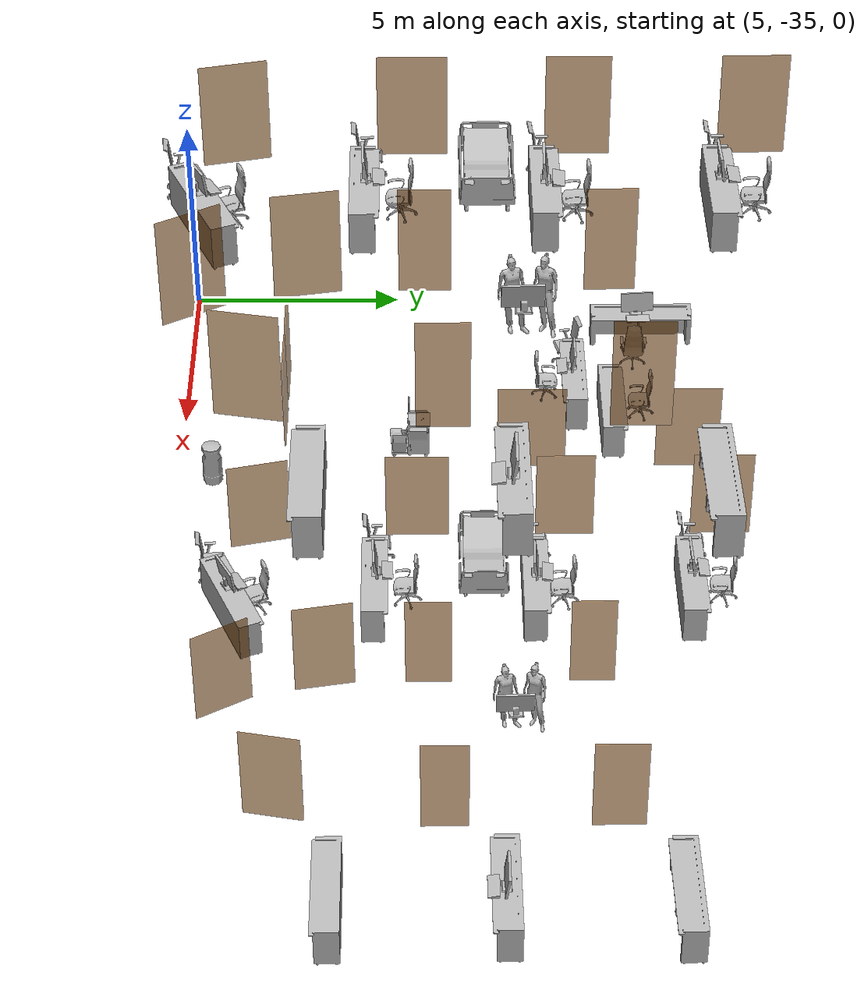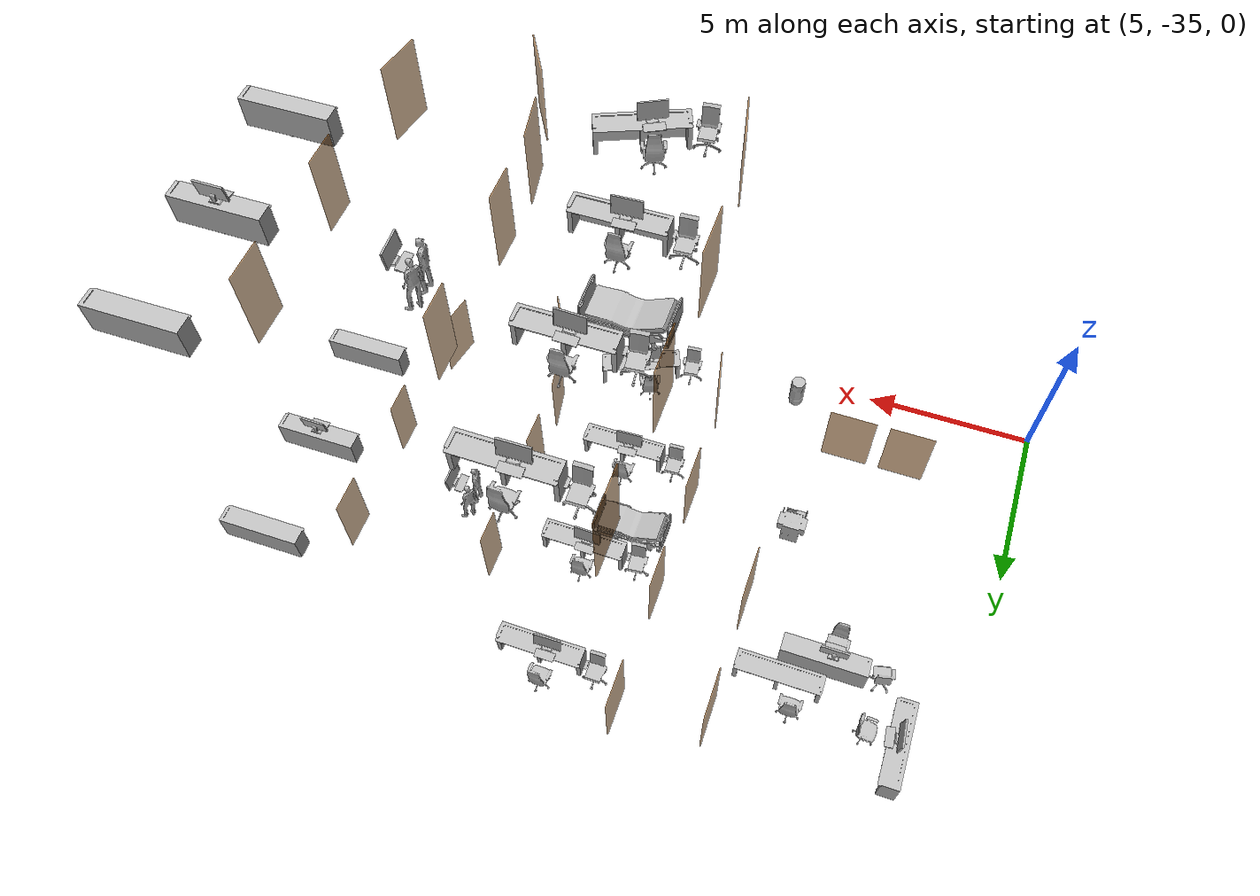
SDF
<sdf version="1.7">
 <world name="sim_world">
  <include>
   <name>OpenRobotics/CGMVanguard_16</name>
   <uri>model://CGMVanguard</uri>
   <pose>15.597392407984323 -28.028079689242748 0.0 0 0 0.0</pose>
   <static>True</static>
  </include>
  <include>
   <name>OpenRobotics/NurseTable_14</name>
   <uri>model://NurseTable</uri>
   <pose>6.872066458982353 -23.99090419599248 0.0 0 0 1.5708</pose>
   <static>True</static>
  </include>
  <include>
   <name>OpenRobotics/NurseTable_15</name>
   <uri>model://NurseTable</uri>
   <pose>17.26572439521558 -33.51072651051886 0.0 0 0 -2.7383</pose>
   <static>True</static>
  </include>
  <include>
   <name>OpenRobotics/NurseTable_16</name>
   <uri>model://NurseTable</uri>
   <pose>25.770343448328934 -31.184662128379706 0.0 0 0 0.0036</pose>
   <static>True</static>
  </include>
  <include>
   <name>OpenRobotics/NurseTable_17</name>
   <uri>model://NurseTable</uri>
   <pose>25.744821353024907 -27.741763778316244 0.0 0 0 0.004</pose>
   <static>True</static>
  </include>
  <include>
   <name>OpenRobotics/NurseTable_18</name>
   <uri>model://NurseTable</uri>
   <pose>16.75862082227608 -30.446028998884685 0.0 0 0 -3.1371</pose>
   <static>True</static>
  </include>
  <include>
   <name>OpenRobotics/NurseTable_19</name>
   <uri>model://NurseTable</uri>
   <pose>16.765620553055665 -26.949690396523234 0.0 0 0 -3.1416</pose>
   <static>True</static>
  </include>
  <include>
   <name>OpenRobotics/NurseTable_20</name>
   <uri>model://NurseTable</uri>
   <pose>16.78801969155034 -23.54494057920851 0.0 0 0 -3.1416</pose>
   <static>True</static>
  </include>
  <include>
   <name>OpenRobotics/NurseTable_26</name>
   <uri>model://NurseTable</uri>
   <pose>25.821468405061367 -24.2898465443637 0.0 0 0 0.0073</pose>
   <static>True</static>
  </include>
  <include>
   <name>OpenRobotics/NurseTable_42</name>
   <uri>model://NurseTable</uri>
   <pose>10.37039729241184 -24.918314680204627 0.0 0 0 -3.1416</pose>
   <static>True</static>
  </include>
  <include>
   <name>OpenRobotics/NurseTable_43</name>
   <uri>model://NurseTable</uri>
   <pose>9.294404061382263 -25.721426098996215 0.0 0 0 0.0</pose>
   <static>True</static>
  </include>
  <include>
   <name>OpenRobotics/DeskChair_12</name>
   <uri>model://DeskChair</uri>
   <pose>7.7511518787739 -24.220279989231205 0.0 0 0 3.0982</pose>
   <static>True</static>
  </include>
  <include>
   <name>OpenRobotics/DeskChair_13</name>
   <uri>model://DeskChair</uri>
   <pose>9.862136071689559 -24.183073727933564 0.0 0 0 -1.5817</pose>
   <static>True</static>
  </include>
  <include>
   <name>OpenRobotics/DeskChair_14</name>
   <uri>model://DeskChair</uri>
   <pose>9.04612899503866 -26.41262259143881 0.0 0 0 1.5708</pose>
   <static>True</static>
  </include>
  <include>
   <name>OpenRobotics/DeskChair_15</name>
   <uri>model://DeskChair</uri>
   <pose>16.567097419330043 -29.722499134648693 0.0 0 0 -1.5664</pose>
   <static>True</static>
  </include>
  <include>
   <name>OpenRobotics/DeskChair_16</name>
   <uri>model://DeskChair</uri>
   <pose>16.78406215145573 -32.98765816699361 0.0 0 0 -1.204</pose>
   <static>True</static>
  </include>
  <include>
   <name>OpenRobotics/DeskChair_21</name>
   <uri>model://DeskChair</uri>
   <pose>16.63941002269145 -26.292011845698266 0.0 0 0 -1.5444</pose>
   <static>True</static>
  </include>
  <include>
   <name>OpenRobotics/DeskChair_22</name>
   <uri>model://DeskChair</uri>
   <pose>16.577408561209197 -22.809861159186205 0.0 0 0 -1.6217</pose>
   <static>True</static>
  </include>
  <include>
   <name>OpenRobotics/OfficeChairGrey_33</name>
   <uri>model://OfficeChairGrey</uri>
   <pose>7.699811545709788 -25.96272835660169 0.0 0 0 0.2197</pose>
   <static>True</static>
  </include>
  <include>
   <name>OpenRobotics/OfficeChairGrey_34</name>
   <uri>model://OfficeChairGrey</uri>
   <pose>15.135517864697524 -30.2370601130726 0.0 0 0 -3.1022</pose>
   <static>True</static>
  </include>
  <include>
   <name>OpenRobotics/OfficeChairGrey_35</name>
   <uri>model://OfficeChairGrey</uri>
   <pose>15.691996461674567 -33.89568478135459 0.0 0 0 -3.0466</pose>
   <static>True</static>
  </include>
  <include>
   <name>OpenRobotics/OfficeChairGrey_46</name>
   <uri>model://OfficeChairGrey</uri>
   <pose>15.123510634206388 -26.75962078381603 0.0 0 0 -3.0521</pose>
   <static>True</static>
  </include>
  <include>
   <name>OpenRobotics/OfficeChairGrey_48</name>
   <uri>model://OfficeChairGrey</uri>
   <pose>15.156786277450882 -23.28740433060269 0.0 0 0 -3.1369</pose>
   <static>True</static>
  </include>
  <include>
   <name>OpenRobotics/MonitorAndKeyboard_12</name>
   <uri>model://MonitorAndKeyboard</uri>
   <pose>9.08500442290682 -25.758982346832838 0.86 0 0 1.5708</pose>
   <static>True</static>
  </include>
  <include>
   <name>OpenRobotics/MonitorAndKeyboard_13</name>
   <uri>model://MonitorAndKeyboard</uri>
   <pose>6.897992384908279 -24.11574170224224 0.86 0 0 -3.0596</pose>
   <static>True</static>
  </include>
  <include>
   <name>OpenRobotics/MonitorAndKeyboard_22</name>
   <uri>model://MonitorAndKeyboard</uri>
   <pose>16.578808507365114 -23.529621937617804 0.86 0 0 -1.5565</pose>
   <static>True</static>
  </include>
  <include>
   <name>OpenRobotics/MonitorAndKeyboard_23</name>
   <uri>model://MonitorAndKeyboard</uri>
   <pose>16.66759740010001 -26.921906849736573 0.86 0 0 -1.5981</pose>
   <static>True</static>
  </include>
  <include>
   <name>OpenRobotics/MonitorAndKeyboard_28</name>
   <uri>model://MonitorAndKeyboard</uri>
   <pose>25.807684319833875 -27.759128495057908 0.86 0 0 1.5708</pose>
   <static>True</static>
  </include>
  <include>
   <name>OpenRobotics/MonitorAndKeyboard_30</name>
   <uri>model://MonitorAndKeyboard</uri>
   <pose>17.036294757893945 -33.59886927425872 0.86 0 0 -1.0917</pose>
   <static>True</static>
  </include>
  <include>
   <name>OpenRobotics/MonitorAndKeyboard_31</name>
   <uri>model://MonitorAndKeyboard</uri>
   <pose>16.593184877504726 -30.402899888465857 0.86 0 0 -1.5318</pose>
   <static>True</static>
  </include>
  <include>
   <name>OpenRobotics/MonitorAndKeyboard_52</name>
   <uri>model://MonitorAndKeyboard</uri>
   <pose>21.12429906542058 -27.467105111341894 0.86 0 0 0.0351</pose>
   <static>True</static>
  </include>
  <include>
   <name>OpenRobotics/LitterBin_8</name>
   <uri>model://LitterBin</uri>
   <pose>12.270716510903437 -34.21376870120383 0.0 0 0 1.5708</pose>
   <static>True</static>
  </include>
  <include>
   <name>OpenRobotics/Scrubs_4</name>
   <uri>model://Scrubs</uri>
   <pose>20.446132841044594 -27.06693588708129 0.0 0 0 -0.4618</pose>
   <static>True</static>
  </include>
  <include>
   <name>OpenRobotics/Scrubs_5</name>
   <uri>model://Scrubs</uri>
   <pose>20.47590861889929 -27.662424522133787 0.0 0 0 0.2369</pose>
   <static>True</static>
  </include>
  <include>
   <name>OpenRobotics/MopCart2_3</name>
   <uri>model://MopCart2</uri>
   <pose>11.208534287142813 -29.69503865235955 0.0 0 0 1.5708</pose>
   <static>True</static>
  </include>
  <model name="L1_left_consult_rm_8_outer">
   <pose>14.54766162839892 -33.0019806930503 0.0 0 0 -1.3439871844568383</pose>
   <static>true</static>
   <link name="right">
    <pose>0 0 1.11 0 0 0</pose>
    <visual name="right_visual">
     <geometry><box><size>1.3621445813119888 0.03 2.2</size></box></geometry>
     <material>
      <ambient>0.5 0.25 0 0.6</ambient>
      <diffuse>0.5 0.25 0 0.6</diffuse>
      <pbr><metal><metalness>0.0</metalness></metal></pbr>
     </material>
    </visual>
    <collision name="right_collision">
     <geometry><box><size>1.3621445813119888 0.03 2.2</size></box></geometry>
     <surface><contact><collide_bitmask>0x02</collide_bitmask></contact></surface>
    </collision>
    <inertial>
     <mass>50.0</mass>
     <inertia><ixx>20.17041666666667</ixx><iyy>27.897657751656727</iyy><izz>7.734741084990055</izz></inertia>
    </inertial>
   </link>
   <joint name="right_joint" type="prismatic">
    <parent>world</parent>
    <child>right</child>
    <axis>
     <xyz>1 0 0</xyz>
     <limit><lower>0.0</lower><upper>1.3721445813119888</upper><effort>500.0</effort></limit>
    </axis>
   </joint>
  </model>
  <model name="L1_left_consult_rm_9_outer">
   <pose>14.307718933887172 -29.486527441252285 0.0 0 0 -1.5707963267948966</pose>
   <static>true</static>
   <link name="right">
    <pose>0 0 1.11 0 0 0</pose>
    <visual name="right_visual">
     <geometry><box><size>1.401791854159457 0.03 2.2</size></box></geometry>
     <material>
      <ambient>0.5 0.25 0 0.6</ambient>
      <diffuse>0.5 0.25 0 0.6</diffuse>
      <pbr><metal><metalness>0.0</metalness></metal></pbr>
     </material>
    </visual>
    <collision name="right_collision">
     <geometry><box><size>1.401791854159457 0.03 2.2</size></box></geometry>
     <surface><contact><collide_bitmask>0x02</collide_bitmask></contact></surface>
    </collision>
    <inertial>
     <mass>50.0</mass>
     <inertia><ixx>20.17041666666667</ixx><iyy>28.354251676615874</iyy><izz>8.191335009949201</izz></inertia>
    </inertial>
   </link>
   <joint name="right_joint" type="prismatic">
    <parent>world</parent>
    <child>right</child>
    <axis>
     <xyz>1 0 0</xyz>
     <limit><lower>0.0</lower><upper>1.411791854159457</upper><effort>500.0</effort></limit>
    </axis>
   </joint>
  </model>
  <model name="L1_left_consult_rm_10_outer">
   <pose>14.307718933887172 -26.181039190800377 0.0 0 0 -1.5707963267948966</pose>
   <static>true</static>
   <link name="right">
    <pose>0 0 1.11 0 0 0</pose>
    <visual name="right_visual">
     <geometry><box><size>1.2997034729433474 0.03 2.2</size></box></geometry>
     <material>
      <ambient>0.5 0.25 0 0.6</ambient>
      <diffuse>0.5 0.25 0 0.6</diffuse>
      <pbr><metal><metalness>0.0</metalness></metal></pbr>
     </material>
    </visual>
    <collision name="right_collision">
     <geometry><box><size>1.2997034729433474 0.03 2.2</size></box></geometry>
     <surface><contact><collide_bitmask>0x02</collide_bitmask></contact></surface>
    </collision>
    <inertial>
     <mass>50.0</mass>
     <inertia><ixx>20.17041666666667</ixx><iyy>27.205121323254165</iyy><izz>7.0422046565874945</izz></inertia>
    </inertial>
   </link>
   <joint name="right_joint" type="prismatic">
    <parent>world</parent>
    <child>right</child>
    <axis>
     <xyz>1 0 0</xyz>
     <limit><lower>0.0</lower><upper>1.3097034729433474</upper><effort>500.0</effort></limit>
    </axis>
   </joint>
  </model>
  <model name="L1_left_consult_rm_11_outer">
   <pose>14.307718933887172 -22.673729856544 0.0 0 0 -1.5707963267948966</pose>
   <static>true</static>
   <link name="right">
    <pose>0 0 1.11 0 0 0</pose>
    <visual name="right_visual">
     <geometry><box><size>1.346359370793431 0.03 2.2</size></box></geometry>
     <material>
      <ambient>0.5 0.25 0 0.6</ambient>
      <diffuse>0.5 0.25 0 0.6</diffuse>
      <pbr><metal><metalness>0.0</metalness></metal></pbr>
     </material>
    </visual>
    <collision name="right_collision">
     <geometry><box><size>1.346359370793431 0.03 2.2</size></box></geometry>
     <surface><contact><collide_bitmask>0x02</collide_bitmask></contact></surface>
    </collision>
    <inertial>
     <mass>50.0</mass>
     <inertia><ixx>20.17041666666667</ixx><iyy>27.719514813847017</iyy><izz>7.556598147180346</izz></inertia>
    </inertial>
   </link>
   <joint name="right_joint" type="prismatic">
    <parent>world</parent>
    <child>right</child>
    <axis>
     <xyz>1 0 0</xyz>
     <limit><lower>0.0</lower><upper>1.356359370793431</upper><effort>500.0</effort></limit>
    </axis>
   </joint>
  </model>
  <model name="L1_left_negative_air_pressure">
   <pose>11.837715857082431 -26.84586554363296 0.0 0 0 -1.5791183096276138</pose>
   <link name="right">
    <pose>0 0 1.11 0 0 0</pose>
    <visual name="right_visual">
     <geometry><box><size>1.5784285274029304 0.03 2.2</size></box></geometry>
     <material>
      <ambient>0.5 0.25 0 0.6</ambient>
      <diffuse>0.5 0.25 0 0.6</diffuse>
      <pbr><metal><metalness>0.0</metalness></metal></pbr>
     </material>
    </visual>
    <collision name="right_collision">
     <geometry><box><size>1.5784285274029304 0.03 2.2</size></box></geometry>
     <surface><contact><collide_bitmask>0x02</collide_bitmask></contact></surface>
    </collision>
    <inertial>
     <mass>50.0</mass>
     <inertia><ixx>20.17041666666667</ixx><iyy>30.547652567164103</iyy><izz>10.384735900497432</izz></inertia>
    </inertial>
   </link>
   <joint name="right_joint" type="prismatic">
    <parent>world</parent>
    <child>right</child>
    <axis>
     <xyz>1 0 0</xyz>
     <limit><lower>0.0</lower><upper>1.5884285274029304</upper><effort>500.0</effort></limit>
    </axis>
   </joint>
   <plugin name="door" filename="libdoor.so">
    <v_max_door>0.2</v_max_door>
    <a_max_door>0.2</a_max_door>
    <a_nom_door>0.08</a_nom_door>
    <dx_min_door>0.001</dx_min_door>
    <f_max_door>100.0</f_max_door>
    <door name="L1_left_negative_air_pressure" type="SlidingDoor" left_joint_name="empty_joint" right_joint_name="right_joint"/>
   </plugin>
  </model>
  <model name="L1_left_counsel_4">
   <pose>11.84769047344334 -23.23487942771434 0.0 0 0 -1.5707963267948966</pose>
   <static>true</static>
   <link name="right">
    <pose>0 0 1.11 0 0 0</pose>
    <visual name="right_visual">
     <geometry><box><size>1.465758624668284 0.03 2.2</size></box></geometry>
     <material>
      <ambient>0.5 0.25 0 0.6</ambient>
      <diffuse>0.5 0.25 0 0.6</diffuse>
      <pbr><metal><metalness>0.0</metalness></metal></pbr>
     </material>
    </visual>
    <collision name="right_collision">
     <geometry><box><size>1.465758624668284 0.03 2.2</size></box></geometry>
     <surface><contact><collide_bitmask>0x02</collide_bitmask></contact></surface>
    </collision>
    <inertial>
     <mass>50.0</mass>
     <inertia><ixx>20.17041666666667</ixx><iyy>29.118534774122757</iyy><izz>8.955618107456084</izz></inertia>
    </inertial>
   </link>
   <joint name="right_joint" type="prismatic">
    <parent>world</parent>
    <child>right</child>
    <axis>
     <xyz>1 0 0</xyz>
     <limit><lower>0.0</lower><upper>1.4757586246682841</upper><effort>500.0</effort></limit>
    </axis>
   </joint>
  </model>
  <model name="L1_dis_wc_2">
   <pose>10.318841583016047 -32.594380985346746 0.0 0 0 -0.002698587139888158</pose>
   <static>true</static>
   <link name="right">
    <pose>0 0 1.11 0 0 0</pose>
    <visual name="right_visual">
     <geometry><box><size>1.4066429798800912 0.03 2.2</size></box></geometry>
     <material>
      <ambient>0.5 0.25 0 0.6</ambient>
      <diffuse>0.5 0.25 0 0.6</diffuse>
      <pbr><metal><metalness>0.0</metalness></metal></pbr>
     </material>
    </visual>
    <collision name="right_collision">
     <geometry><box><size>1.4066429798800912 0.03 2.2</size></box></geometry>
     <surface><contact><collide_bitmask>0x02</collide_bitmask></contact></surface>
    </collision>
    <inertial>
     <mass>50.0</mass>
     <inertia><ixx>20.17041666666667</ixx><iyy>28.4110186368581</iyy><izz>8.248101970191428</izz></inertia>
    </inertial>
   </link>
   <joint name="right_joint" type="prismatic">
    <parent>world</parent>
    <child>right</child>
    <axis>
     <xyz>1 0 0</xyz>
     <limit><lower>0.0</lower><upper>1.4166429798800912</upper><effort>500.0</effort></limit>
    </axis>
   </joint>
  </model>
  <model name="L1_dis_wc_1">
   <pose>8.551961463020662 -32.596292450290406 0.0 0 0 3.141592653589793</pose>
   <static>true</static>
   <link name="right">
    <pose>0 0 1.11 0 0 0</pose>
    <visual name="right_visual">
     <geometry><box><size>1.3391442636821675 0.03 2.2</size></box></geometry>
     <material>
      <ambient>0.5 0.25 0 0.6</ambient>
      <diffuse>0.5 0.25 0 0.6</diffuse>
      <pbr><metal><metalness>0.0</metalness></metal></pbr>
     </material>
    </visual>
    <collision name="right_collision">
     <geometry><box><size>1.3391442636821675 0.03 2.2</size></box></geometry>
     <surface><contact><collide_bitmask>0x02</collide_bitmask></contact></surface>
    </collision>
    <inertial>
     <mass>50.0</mass>
     <inertia><ixx>20.17041666666667</ixx><iyy>27.638780662303567</iyy><izz>7.475863995636895</izz></inertia>
    </inertial>
   </link>
   <joint name="right_joint" type="prismatic">
    <parent>world</parent>
    <child>right</child>
    <axis>
     <xyz>1 0 0</xyz>
     <limit><lower>0.0</lower><upper>1.3491442636821676</upper><effort>500.0</effort></limit>
    </axis>
   </joint>
  </model>
  <model name="L1_left_consult_rm_10_inner">
   <pose>19.167982000692298 -25.7948963501404 0.0 0 0 1.5707963267948966</pose>
   <static>true</static>
   <link name="right">
    <pose>0 0 1.11 0 0 0</pose>
    <visual name="right_visual">
     <geometry><box><size>0.9495554017153205 0.03 2.2</size></box></geometry>
     <material>
      <ambient>0.5 0.25 0 0.6</ambient>
      <diffuse>0.5 0.25 0 0.6</diffuse>
      <pbr><metal><metalness>0.0</metalness></metal></pbr>
     </material>
    </visual>
    <collision name="right_collision">
     <geometry><box><size>0.9495554017153205 0.03 2.2</size></box></geometry>
     <surface><contact><collide_bitmask>0x02</collide_bitmask></contact></surface>
    </collision>
    <inertial>
     <mass>50.0</mass>
     <inertia><ixx>20.17041666666667</ixx><iyy>23.923564420528106</iyy><izz>3.760647753861432</izz></inertia>
    </inertial>
   </link>
   <joint name="right_joint" type="prismatic">
    <parent>world</parent>
    <child>right</child>
    <axis>
     <xyz>1 0 0</xyz>
     <limit><lower>0.0</lower><upper>0.9595554017153205</upper><effort>500.0</effort></limit>
    </axis>
   </joint>
  </model>
  <model name="L1_left_consult_rm_9_inner">
   <pose>19.167982000692298 -29.246678973885643 0.0 0 0 1.5707963267948966</pose>
   <static>true</static>
   <link name="right">
    <pose>0 0 1.11 0 0 0</pose>
    <visual name="right_visual">
     <geometry><box><size>0.9762082227606628 0.03 2.2</size></box></geometry>
     <material>
      <ambient>0.5 0.25 0 0.6</ambient>
      <diffuse>0.5 0.25 0 0.6</diffuse>
      <pbr><metal><metalness>0.0</metalness></metal></pbr>
     </material>
    </visual>
    <collision name="right_collision">
     <geometry><box><size>0.9762082227606628 0.03 2.2</size></box></geometry>
     <surface><contact><collide_bitmask>0x02</collide_bitmask></contact></surface>
    </collision>
    <inertial>
     <mass>50.0</mass>
     <inertia><ixx>20.17041666666667</ixx><iyy>24.13742705910639</iyy><izz>3.9745103924397163</izz></inertia>
    </inertial>
   </link>
   <joint name="right_joint" type="prismatic">
    <parent>world</parent>
    <child>right</child>
    <axis>
     <xyz>1 0 0</xyz>
     <limit><lower>0.0</lower><upper>0.9862082227606628</upper><effort>500.0</effort></limit>
    </axis>
   </joint>
  </model>
  <model name="L1_left_consult_rm_8_inner">
   <pose>19.279587323564495 -31.432062228375862 0.0 0 0 1.7466565776642482</pose>
   <static>true</static>
   <link name="left">
    <pose>0 0 1.11 0 0 0</pose>
    <visual name="left_visual">
     <geometry><box><size>1.2738178645197111 0.03 2.2</size></box></geometry>
     <material>
      <ambient>0.5 0.25 0 0.6</ambient>
      <diffuse>0.5 0.25 0 0.6</diffuse>
      <pbr><metal><metalness>0.0</metalness></metal></pbr>
     </material>
    </visual>
    <collision name="left_collision">
     <geometry><box><size>1.2738178645197111 0.03 2.2</size></box></geometry>
     <surface><contact><collide_bitmask>0x02</collide_bitmask></contact></surface>
    </collision>
    <inertial>
     <mass>50.0</mass>
     <inertia><ixx>20.17041666666667</ixx><iyy>26.927549799873162</iyy><izz>6.764633133206488</izz></inertia>
    </inertial>
   </link>
   <joint name="left_joint" type="revolute">
    <parent>world</parent>
    <child>left</child>
    <axis><xyz>0 0 1</xyz><limit><lower>-1.57</lower><upper>0</upper></limit></axis>
    <pose>0.6419089322598556 0 0 0 0 0</pose>
   </joint>
  </model>
  <model name="L1_left_consult_rm_6_inner">
   <pose>23.07516441675322 -32.36259566939736 0.0 0 0 -1.7753735570339602</pose>
   <static>true</static>
   <link name="left">
    <pose>0 0 1.11 0 0 0</pose>
    <visual name="left_visual">
     <geometry><box><size>1.253056385051704 0.03 2.2</size></box></geometry>
     <material>
      <ambient>0.5 0.25 0 0.6</ambient>
      <diffuse>0.5 0.25 0 0.6</diffuse>
      <pbr><metal><metalness>0.0</metalness></metal></pbr>
     </material>
    </visual>
    <collision name="left_collision">
     <geometry><box><size>1.253056385051704 0.03 2.2</size></box></geometry>
     <surface><contact><collide_bitmask>0x02</collide_bitmask></contact></surface>
    </collision>
    <inertial>
     <mass>50.0</mass>
     <inertia><ixx>20.17041666666667</ixx><iyy>26.70895960049519</iyy><izz>6.5460429338285175</izz></inertia>
    </inertial>
   </link>
   <joint name="left_joint" type="revolute">
    <parent>world</parent>
    <child>left</child>
    <axis><xyz>0 0 1</xyz><limit><lower>-1.57</lower><upper>0</upper></limit></axis>
    <pose>0.631528192525852 0 0 0 0 0</pose>
   </joint>
  </model>
  <model name="L1_left_consult_rm_5_inner">
   <pose>23.381523787546655 -28.936119764624465 0.0 0 0 -1.5707963267948966</pose>
   <static>true</static>
   <link name="right">
    <pose>0 0 1.11 0 0 0</pose>
    <visual name="right_visual">
     <geometry><box><size>0.9625587477404716 0.03 2.2</size></box></geometry>
     <material>
      <ambient>0.5 0.25 0 0.6</ambient>
      <diffuse>0.5 0.25 0 0.6</diffuse>
      <pbr><metal><metalness>0.0</metalness></metal></pbr>
     </material>
    </visual>
    <collision name="right_collision">
     <geometry><box><size>0.9625587477404716 0.03 2.2</size></box></geometry>
     <surface><contact><collide_bitmask>0x02</collide_bitmask></contact></surface>
    </collision>
    <inertial>
     <mass>50.0</mass>
     <inertia><ixx>20.17041666666667</ixx><iyy>24.027163928548777</iyy><izz>3.8642472618821038</izz></inertia>
    </inertial>
   </link>
   <joint name="right_joint" type="prismatic">
    <parent>world</parent>
    <child>right</child>
    <axis>
     <xyz>1 0 0</xyz>
     <limit><lower>0.0</lower><upper>0.9725587477404716</upper><effort>500.0</effort></limit>
    </axis>
   </joint>
  </model>
  <model name="L1_left_consult_rm_4_inner">
   <pose>23.381523787546655 -25.472760663051446 0.0 0 0 -1.5707963267948966</pose>
   <static>true</static>
   <link name="right">
    <pose>0 0 1.11 0 0 0</pose>
    <visual name="right_visual">
     <geometry><box><size>1.0858616976270115 0.03 2.2</size></box></geometry>
     <material>
      <ambient>0.5 0.25 0 0.6</ambient>
      <diffuse>0.5 0.25 0 0.6</diffuse>
      <pbr><metal><metalness>0.0</metalness></metal></pbr>
     </material>
    </visual>
    <collision name="right_collision">
     <geometry><box><size>1.0858616976270115 0.03 2.2</size></box></geometry>
     <surface><contact><collide_bitmask>0x02</collide_bitmask></contact></surface>
    </collision>
    <inertial>
     <mass>50.0</mass>
     <inertia><ixx>20.17041666666667</ixx><iyy>25.079565109889238</iyy><izz>4.916648443222564</izz></inertia>
    </inertial>
   </link>
   <joint name="right_joint" type="prismatic">
    <parent>world</parent>
    <child>right</child>
    <axis>
     <xyz>1 0 0</xyz>
     <limit><lower>0.0</lower><upper>1.0958616976270115</upper><effort>500.0</effort></limit>
    </axis>
   </joint>
  </model>
  <model name="L1_left_consult_rm_7_inner">
   <pose>19.927641244567532 -33.51677050882661 0.0 0 0 2.0944857459239765</pose>
   <static>true</static>
   <link name="left">
    <pose>0 0 1.11 0 0 0</pose>
    <visual name="left_visual">
     <geometry><box><size>1.301220628393137 0.03 2.2</size></box></geometry>
     <material>
      <ambient>0.5 0.25 0 0.6</ambient>
      <diffuse>0.5 0.25 0 0.6</diffuse>
      <pbr><metal><metalness>0.0</metalness></metal></pbr>
     </material>
    </visual>
    <collision name="left_collision">
     <geometry><box><size>1.301220628393137 0.03 2.2</size></box></geometry>
     <surface><contact><collide_bitmask>0x02</collide_bitmask></contact></surface>
    </collision>
    <inertial>
     <mass>50.0</mass>
     <inertia><ixx>20.17041666666667</ixx><iyy>27.221563015649295</iyy><izz>7.058646348982625</izz></inertia>
    </inertial>
   </link>
   <joint name="left_joint" type="revolute">
    <parent>world</parent>
    <child>left</child>
    <axis><xyz>0 0 1</xyz><limit><lower>-1.57</lower><upper>0</upper></limit></axis>
    <pose>0.6556103141965685 0 0 0 0 0</pose>
   </joint>
  </model>
  <include>
   <name>OpenRobotics/CGMVanguard_34</name>
   <uri>model://CGMVanguard</uri>
   <pose>15.597392407984323 -28.028079689242748 10.0 0 0 0.0</pose>
   <static>True</static>
  </include>
  <include>
   <name>OpenRobotics/NurseTable_55</name>
   <uri>model://NurseTable</uri>
   <pose>17.26572439521558 -33.51072651051886 10.0 0 0 -2.7383</pose>
   <static>True</static>
  </include>
  <include>
   <name>OpenRobotics/NurseTable_56</name>
   <uri>model://NurseTable</uri>
   <pose>25.770343448328934 -31.184662128379706 10.0 0 0 0.0036</pose>
   <static>True</static>
  </include>
  <include>
   <name>OpenRobotics/NurseTable_57</name>
   <uri>model://NurseTable</uri>
   <pose>25.744821353024907 -27.741763778316244 10.0 0 0 0.004</pose>
   <static>True</static>
  </include>
  <include>
   <name>OpenRobotics/NurseTable_58</name>
   <uri>model://NurseTable</uri>
   <pose>16.75862082227608 -30.446028998884685 10.0 0 0 -3.1371</pose>
   <static>True</static>
  </include>
  <include>
   <name>OpenRobotics/NurseTable_59</name>
   <uri>model://NurseTable</uri>
   <pose>16.765620553055665 -26.949690396523234 10.0 0 0 -3.1416</pose>
   <static>True</static>
  </include>
  <include>
   <name>OpenRobotics/NurseTable_60</name>
   <uri>model://NurseTable</uri>
   <pose>16.78801969155034 -23.54494057920851 10.0 0 0 -3.1416</pose>
   <static>True</static>
  </include>
  <include>
   <name>OpenRobotics/NurseTable_66</name>
   <uri>model://NurseTable</uri>
   <pose>25.821468405061367 -24.2898465443637 10.0 0 0 0.0073</pose>
   <static>True</static>
  </include>
  <include>
   <name>OpenRobotics/DeskChair_55</name>
   <uri>model://DeskChair</uri>
   <pose>16.567097419330043 -29.722499134648693 10.0 0 0 -1.5664</pose>
   <static>True</static>
  </include>
  <include>
   <name>OpenRobotics/DeskChair_56</name>
   <uri>model://DeskChair</uri>
   <pose>16.78406215145573 -32.98765816699361 10.0 0 0 -1.204</pose>
   <static>True</static>
  </include>
  <include>
   <name>OpenRobotics/DeskChair_61</name>
   <uri>model://DeskChair</uri>
   <pose>16.63941002269145 -26.292011845698266 10.0 0 0 -1.5444</pose>
   <static>True</static>
  </include>
  <include>
   <name>OpenRobotics/DeskChair_62</name>
   <uri>model://DeskChair</uri>
   <pose>16.577408561209197 -22.809861159186205 10.0 0 0 -1.6217</pose>
   <static>True</static>
  </include>
  <include>
   <name>OpenRobotics/OfficeChairGrey_74</name>
   <uri>model://OfficeChairGrey</uri>
   <pose>15.135517864697524 -30.2370601130726 10.0 0 0 -3.1022</pose>
   <static>True</static>
  </include>
  <include>
   <name>OpenRobotics/OfficeChairGrey_75</name>
   <uri>model://OfficeChairGrey</uri>
   <pose>15.691996461674567 -33.89568478135459 10.0 0 0 -3.0466</pose>
   <static>True</static>
  </include>
  <include>
   <name>OpenRobotics/OfficeChairGrey_82</name>
   <uri>model://OfficeChairGrey</uri>
   <pose>15.123510634206388 -26.75962078381603 10.0 0 0 -3.0521</pose>
   <static>True</static>
  </include>
  <include>
   <name>OpenRobotics/OfficeChairGrey_84</name>
   <uri>model://OfficeChairGrey</uri>
   <pose>15.156786277450882 -23.28740433060269 10.0 0 0 -3.1369</pose>
   <static>True</static>
  </include>
  <include>
   <name>OpenRobotics/MonitorAndKeyboard_65</name>
   <uri>model://MonitorAndKeyboard</uri>
   <pose>16.578808507365114 -23.529621937617804 10.86 0 0 -1.5565</pose>
   <static>True</static>
  </include>
  <include>
   <name>OpenRobotics/MonitorAndKeyboard_66</name>
   <uri>model://MonitorAndKeyboard</uri>
   <pose>16.66759740010001 -26.921906849736573 10.86 0 0 -1.5981</pose>
   <static>True</static>
  </include>
  <include>
   <name>OpenRobotics/MonitorAndKeyboard_71</name>
   <uri>model://MonitorAndKeyboard</uri>
   <pose>25.807684319833875 -27.759128495057908 10.86 0 0 1.5708</pose>
   <static>True</static>
  </include>
  <include>
   <name>OpenRobotics/MonitorAndKeyboard_73</name>
   <uri>model://MonitorAndKeyboard</uri>
   <pose>17.036294757893945 -33.59886927425872 10.86 0 0 -1.0917</pose>
   <static>True</static>
  </include>
  <include>
   <name>OpenRobotics/MonitorAndKeyboard_74</name>
   <uri>model://MonitorAndKeyboard</uri>
   <pose>16.593184877504726 -30.402899888465857 10.86 0 0 -1.5318</pose>
   <static>True</static>
  </include>
  <include>
   <name>OpenRobotics/MonitorAndKeyboard_92</name>
   <uri>model://MonitorAndKeyboard</uri>
   <pose>21.12429906542058 -27.467105111341894 10.86 0 0 0.0351</pose>
   <static>True</static>
  </include>
  <include>
   <name>OpenRobotics/Scrubs_7</name>
   <uri>model://Scrubs</uri>
   <pose>20.446132841044594 -27.06693588708129 10.0 0 0 -0.4618</pose>
   <static>True</static>
  </include>
  <include>
   <name>OpenRobotics/Scrubs_8</name>
   <uri>model://Scrubs</uri>
   <pose>20.47590861889929 -27.662424522133787 10.0 0 0 0.2369</pose>
   <static>True</static>
  </include>
  <model name="L2_left_consult_rm_8_outer">
   <pose>14.54766162839892 -33.0019806930503 10.0 0 0 -1.3439871844568383</pose>
   <static>true</static>
   <link name="right">
    <pose>0 0 1.11 0 0 0</pose>
    <visual name="right_visual">
     <geometry><box><size>1.3621445813119888 0.03 2.2</size></box></geometry>
     <material>
      <ambient>0.5 0.25 0 0.6</ambient>
      <diffuse>0.5 0.25 0 0.6</diffuse>
      <pbr><metal><metalness>0.0</metalness></metal></pbr>
     </material>
    </visual>
    <collision name="right_collision">
     <geometry><box><size>1.3621445813119888 0.03 2.2</size></box></geometry>
     <surface><contact><collide_bitmask>0x02</collide_bitmask></contact></surface>
    </collision>
    <inertial>
     <mass>50.0</mass>
     <inertia><ixx>20.17041666666667</ixx><iyy>27.897657751656727</iyy><izz>7.734741084990055</izz></inertia>
    </inertial>
   </link>
   <joint name="right_joint" type="prismatic">
    <parent>world</parent>
    <child>right</child>
    <axis>
     <xyz>1 0 0</xyz>
     <limit><lower>0.0</lower><upper>1.3721445813119888</upper><effort>500.0</effort></limit>
    </axis>
   </joint>
  </model>
  <model name="L2_left_consult_rm_9_outer">
   <pose>14.307718933887172 -29.486527441252285 10.0 0 0 -1.5707963267948966</pose>
   <static>true</static>
   <link name="right">
    <pose>0 0 1.11 0 0 0</pose>
    <visual name="right_visual">
     <geometry><box><size>1.401791854159457 0.03 2.2</size></box></geometry>
     <material>
      <ambient>0.5 0.25 0 0.6</ambient>
      <diffuse>0.5 0.25 0 0.6</diffuse>
      <pbr><metal><metalness>0.0</metalness></metal></pbr>
     </material>
    </visual>
    <collision name="right_collision">
     <geometry><box><size>1.401791854159457 0.03 2.2</size></box></geometry>
     <surface><contact><collide_bitmask>0x02</collide_bitmask></contact></surface>
    </collision>
    <inertial>
     <mass>50.0</mass>
     <inertia><ixx>20.17041666666667</ixx><iyy>28.354251676615874</iyy><izz>8.191335009949201</izz></inertia>
    </inertial>
   </link>
   <joint name="right_joint" type="prismatic">
    <parent>world</parent>
    <child>right</child>
    <axis>
     <xyz>1 0 0</xyz>
     <limit><lower>0.0</lower><upper>1.411791854159457</upper><effort>500.0</effort></limit>
    </axis>
   </joint>
  </model>
  <model name="L2_left_consult_rm_10_outer">
   <pose>14.307718933887172 -26.181039190800377 10.0 0 0 -1.5707963267948966</pose>
   <static>true</static>
   <link name="right">
    <pose>0 0 1.11 0 0 0</pose>
    <visual name="right_visual">
     <geometry><box><size>1.2997034729433474 0.03 2.2</size></box></geometry>
     <material>
      <ambient>0.5 0.25 0 0.6</ambient>
      <diffuse>0.5 0.25 0 0.6</diffuse>
      <pbr><metal><metalness>0.0</metalness></metal></pbr>
     </material>
    </visual>
    <collision name="right_collision">
     <geometry><box><size>1.2997034729433474 0.03 2.2</size></box></geometry>
     <surface><contact><collide_bitmask>0x02</collide_bitmask></contact></surface>
    </collision>
    <inertial>
     <mass>50.0</mass>
     <inertia><ixx>20.17041666666667</ixx><iyy>27.205121323254165</iyy><izz>7.0422046565874945</izz></inertia>
    </inertial>
   </link>
   <joint name="right_joint" type="prismatic">
    <parent>world</parent>
    <child>right</child>
    <axis>
     <xyz>1 0 0</xyz>
     <limit><lower>0.0</lower><upper>1.3097034729433474</upper><effort>500.0</effort></limit>
    </axis>
   </joint>
  </model>
  <model name="L2_left_consult_rm_11_outer">
   <pose>14.307718933887172 -22.673729856544 10.0 0 0 -1.5707963267948966</pose>
   <static>true</static>
   <link name="right">
    <pose>0 0 1.11 0 0 0</pose>
    <visual name="right_visual">
     <geometry><box><size>1.346359370793431 0.03 2.2</size></box></geometry>
     <material>
      <ambient>0.5 0.25 0 0.6</ambient>
      <diffuse>0.5 0.25 0 0.6</diffuse>
      <pbr><metal><metalness>0.0</metalness></metal></pbr>
     </material>
    </visual>
    <collision name="right_collision">
     <geometry><box><size>1.346359370793431 0.03 2.2</size></box></geometry>
     <surface><contact><collide_bitmask>0x02</collide_bitmask></contact></surface>
    </collision>
    <inertial>
     <mass>50.0</mass>
     <inertia><ixx>20.17041666666667</ixx><iyy>27.719514813847017</iyy><izz>7.556598147180346</izz></inertia>
    </inertial>
   </link>
   <joint name="right_joint" type="prismatic">
    <parent>world</parent>
    <child>right</child>
    <axis>
     <xyz>1 0 0</xyz>
     <limit><lower>0.0</lower><upper>1.356359370793431</upper><effort>500.0</effort></limit>
    </axis>
   </joint>
  </model>
  <model name="L2_left_consult_rm_10_inner">
   <pose>19.167982000692298 -25.7948963501404 10.0 0 0 1.5707963267948966</pose>
   <static>true</static>
   <link name="right">
    <pose>0 0 1.11 0 0 0</pose>
    <visual name="right_visual">
     <geometry><box><size>0.9495554017153205 0.03 2.2</size></box></geometry>
     <material>
      <ambient>0.5 0.25 0 0.6</ambient>
      <diffuse>0.5 0.25 0 0.6</diffuse>
      <pbr><metal><metalness>0.0</metalness></metal></pbr>
     </material>
    </visual>
    <collision name="right_collision">
     <geometry><box><size>0.9495554017153205 0.03 2.2</size></box></geometry>
     <surface><contact><collide_bitmask>0x02</collide_bitmask></contact></surface>
    </collision>
    <inertial>
     <mass>50.0</mass>
     <inertia><ixx>20.17041666666667</ixx><iyy>23.923564420528106</iyy><izz>3.760647753861432</izz></inertia>
    </inertial>
   </link>
   <joint name="right_joint" type="prismatic">
    <parent>world</parent>
    <child>right</child>
    <axis>
     <xyz>1 0 0</xyz>
     <limit><lower>0.0</lower><upper>0.9595554017153205</upper><effort>500.0</effort></limit>
    </axis>
   </joint>
  </model>
  <model name="L2_left_consult_rm_9_inner">
   <pose>19.167982000692298 -29.246678973885643 10.0 0 0 1.5707963267948966</pose>
   <static>true</static>
   <link name="right">
    <pose>0 0 1.11 0 0 0</pose>
    <visual name="right_visual">
     <geometry><box><size>0.9762082227606628 0.03 2.2</size></box></geometry>
     <material>
      <ambient>0.5 0.25 0 0.6</ambient>
      <diffuse>0.5 0.25 0 0.6</diffuse>
      <pbr><metal><metalness>0.0</metalness></metal></pbr>
     </material>
    </visual>
    <collision name="right_collision">
     <geometry><box><size>0.9762082227606628 0.03 2.2</size></box></geometry>
     <surface><contact><collide_bitmask>0x02</collide_bitmask></contact></surface>
    </collision>
    <inertial>
     <mass>50.0</mass>
     <inertia><ixx>20.17041666666667</ixx><iyy>24.13742705910639</iyy><izz>3.9745103924397163</izz></inertia>
    </inertial>
   </link>
   <joint name="right_joint" type="prismatic">
    <parent>world</parent>
    <child>right</child>
    <axis>
     <xyz>1 0 0</xyz>
     <limit><lower>0.0</lower><upper>0.9862082227606628</upper><effort>500.0</effort></limit>
    </axis>
   </joint>
  </model>
  <model name="L2_left_consult_rm_8_inner">
   <pose>19.279587323564495 -31.432062228375862 10.0 0 0 1.7466565776642482</pose>
   <static>true</static>
   <link name="left">
    <pose>0 0 1.11 0 0 0</pose>
    <visual name="left_visual">
     <geometry><box><size>1.2738178645197111 0.03 2.2</size></box></geometry>
     <material>
      <ambient>0.5 0.25 0 0.6</ambient>
      <diffuse>0.5 0.25 0 0.6</diffuse>
      <pbr><metal><metalness>0.0</metalness></metal></pbr>
     </material>
    </visual>
    <collision name="left_collision">
     <geometry><box><size>1.2738178645197111 0.03 2.2</size></box></geometry>
     <surface><contact><collide_bitmask>0x02</collide_bitmask></contact></surface>
    </collision>
    <inertial>
     <mass>50.0</mass>
     <inertia><ixx>20.17041666666667</ixx><iyy>26.927549799873162</iyy><izz>6.764633133206488</izz></inertia>
    </inertial>
   </link>
   <joint name="left_joint" type="revolute">
    <parent>world</parent>
    <child>left</child>
    <axis><xyz>0 0 1</xyz><limit><lower>-1.57</lower><upper>0</upper></limit></axis>
    <pose>0.6419089322598556 0 0 0 0 0</pose>
   </joint>
  </model>
  <model name="L2_left_consult_rm_7_inner">
   <pose>19.927641244567532 -33.51677050882661 10.0 0 0 2.0944857459239765</pose>
   <static>true</static>
   <link name="left">
    <pose>0 0 1.11 0 0 0</pose>
    <visual name="left_visual">
     <geometry><box><size>1.301220628393137 0.03 2.2</size></box></geometry>
     <material>
      <ambient>0.5 0.25 0 0.6</ambient>
      <diffuse>0.5 0.25 0 0.6</diffuse>
      <pbr><metal><metalness>0.0</metalness></metal></pbr>
     </material>
    </visual>
    <collision name="left_collision">
     <geometry><box><size>1.301220628393137 0.03 2.2</size></box></geometry>
     <surface><contact><collide_bitmask>0x02</collide_bitmask></contact></surface>
    </collision>
    <inertial>
     <mass>50.0</mass>
     <inertia><ixx>20.17041666666667</ixx><iyy>27.221563015649295</iyy><izz>7.058646348982625</izz></inertia>
    </inertial>
   </link>
   <joint name="left_joint" type="revolute">
    <parent>world</parent>
    <child>left</child>
    <axis><xyz>0 0 1</xyz><limit><lower>-1.57</lower><upper>0</upper></limit></axis>
    <pose>0.6556103141965685 0 0 0 0 0</pose>
   </joint>
  </model>
  <model name="L2_left_consult_rm_6_inner">
   <pose>23.07516441675322 -32.36259566939736 10.0 0 0 -1.7753735570339602</pose>
   <static>true</static>
   <link name="left">
    <pose>0 0 1.11 0 0 0</pose>
    <visual name="left_visual">
     <geometry><box><size>1.253056385051704 0.03 2.2</size></box></geometry>
     <material>
      <ambient>0.5 0.25 0 0.6</ambient>
      <diffuse>0.5 0.25 0 0.6</diffuse>
      <pbr><metal><metalness>0.0</metalness></metal></pbr>
     </material>
    </visual>
    <collision name="left_collision">
     <geometry><box><size>1.253056385051704 0.03 2.2</size></box></geometry>
     <surface><contact><collide_bitmask>0x02</collide_bitmask></contact></surface>
    </collision>
    <inertial>
     <mass>50.0</mass>
     <inertia><ixx>20.17041666666667</ixx><iyy>26.70895960049519</iyy><izz>6.5460429338285175</izz></inertia>
    </inertial>
   </link>
   <joint name="left_joint" type="revolute">
    <parent>world</parent>
    <child>left</child>
    <axis><xyz>0 0 1</xyz><limit><lower>-1.57</lower><upper>0</upper></limit></axis>
    <pose>0.631528192525852 0 0 0 0 0</pose>
   </joint>
  </model>
  <model name="L2_left_consult_rm_5_inner">
   <pose>23.381523787546655 -28.936119764624465 10.0 0 0 -1.5707963267948966</pose>
   <static>true</static>
   <link name="right">
    <pose>0 0 1.11 0 0 0</pose>
    <visual name="right_visual">
     <geometry><box><size>0.9625587477404716 0.03 2.2</size></box></geometry>
     <material>
      <ambient>0.5 0.25 0 0.6</ambient>
      <diffuse>0.5 0.25 0 0.6</diffuse>
      <pbr><metal><metalness>0.0</metalness></metal></pbr>
     </material>
    </visual>
    <collision name="right_collision">
     <geometry><box><size>0.9625587477404716 0.03 2.2</size></box></geometry>
     <surface><contact><collide_bitmask>0x02</collide_bitmask></contact></surface>
    </collision>
    <inertial>
     <mass>50.0</mass>
     <inertia><ixx>20.17041666666667</ixx><iyy>24.027163928548777</iyy><izz>3.8642472618821038</izz></inertia>
    </inertial>
   </link>
   <joint name="right_joint" type="prismatic">
    <parent>world</parent>
    <child>right</child>
    <axis>
     <xyz>1 0 0</xyz>
     <limit><lower>0.0</lower><upper>0.9725587477404716</upper><effort>500.0</effort></limit>
    </axis>
   </joint>
  </model>
  <model name="L2_left_consult_rm_4_inner">
   <pose>23.381523787546655 -25.472760663051446 10.0 0 0 -1.5707963267948966</pose>
   <static>true</static>
   <link name="right">
    <pose>0 0 1.11 0 0 0</pose>
    <visual name="right_visual">
     <geometry><box><size>1.0858616976270115 0.03 2.2</size></box></geometry>
     <material>
      <ambient>0.5 0.25 0 0.6</ambient>
      <diffuse>0.5 0.25 0 0.6</diffuse>
      <pbr><metal><metalness>0.0</metalness></metal></pbr>
     </material>
    </visual>
    <collision name="right_collision">
     <geometry><box><size>1.0858616976270115 0.03 2.2</size></box></geometry>
     <surface><contact><collide_bitmask>0x02</collide_bitmask></contact></surface>
    </collision>
    <inertial>
     <mass>50.0</mass>
     <inertia><ixx>20.17041666666667</ixx><iyy>25.079565109889238</iyy><izz>4.916648443222564</izz></inertia>
    </inertial>
   </link>
   <joint name="right_joint" type="prismatic">
    <parent>world</parent>
    <child>right</child>
    <axis>
     <xyz>1 0 0</xyz>
     <limit><lower>0.0</lower><upper>1.0958616976270115</upper><effort>500.0</effort></limit>
    </axis>
   </joint>
  </model>
 </world>
</sdf>
